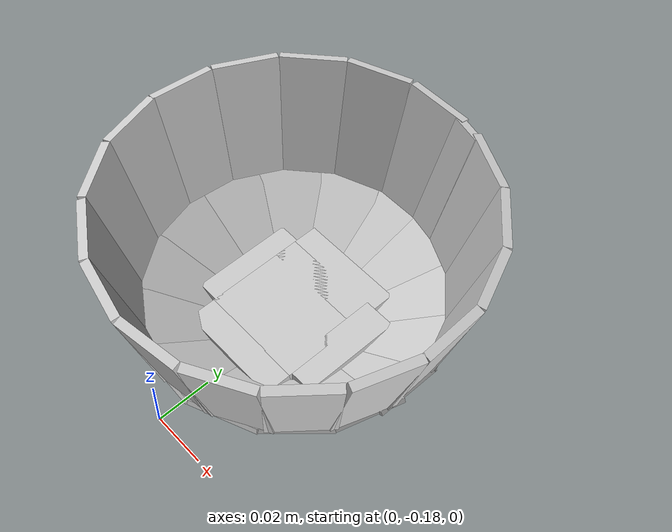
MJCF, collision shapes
<?xml version='1.0' encoding='utf-8'?>
<mujoco model="akita_black_bowl">
  <asset>
  <texture file="texture.png" name="tex-akita_black_bowl" type="2d" />
  <material name="akita_black_bowl" reflectance="0.5" texrepeat="1 1" texture="tex-akita_black_bowl" texuniform="false" />
  <mesh file="visual/akita_bowl_vis.msh" name="akita_black_bowl_vis" scale="0.85 0.85 0.85" /></asset>
  <worldbody>
    <body>
      <body name="object" pos="0.0 -0.12140000000000001 0.0">
      <geom solimp="0.998 0.998 0.001" solref="0.001 1" density="100" friction="0.95 0.3 0.1" type="mesh" mesh="akita_black_bowl_vis" conaffinity="0" contype="0" group="1" material="akita_black_bowl" /><geom solimp="0.998 0.998 0.001" solref="0.001 1" density="100" friction="0.95 0.3 0.1" type="box" pos="-0.0001214 0.04080254 0.01139946" quat="0.60990 -0.35780 -0.35780 -0.60990" size="0.00086194 0.012042879999999999 0.01441018" group="0" rgba="0.8 0.8 0.8 0.3" /><geom solimp="0.998 0.998 0.001" solref="0.001 1" density="100" friction="0.95 0.3 0.1" type="box" pos="-0.01783366 0.03662638 0.01164226" quat="0.45959 -0.42672 0.26704 0.73169" size="0.00086194 0.012042879999999999 0.01441018" group="0" rgba="0.8 0.8 0.8 0.3" /><geom solimp="0.998 0.998 0.001" solref="0.001 1" density="100" friction="0.95 0.3 0.1" type="box" pos="-0.0316247 0.025591120000000002 0.0118365" quat="0.29172 -0.47299 0.16619 0.81459" size="0.00086194 0.012042879999999999 0.01441018" group="0" rgba="0.8 0.8 0.8 0.3" /><geom solimp="0.998 0.998 0.001" solref="0.001 1" density="100" friction="0.95 0.3 0.1" type="box" pos="-0.039491420000000006 0.00962702 0.01194576" quat="0.10855 -0.49698 0.05658 0.85908" size="0.00086194 0.012042879999999999 0.01441018" group="0" rgba="0.8 0.8 0.8 0.3" /><geom solimp="0.998 0.998 0.001" solref="0.001 1" density="100" friction="0.95 0.3 0.1" type="box" pos="-0.039904180000000004 -0.007708899999999999 0.01194576" quat="0.49761 -0.07722 0.86246 0.05074" size="0.00086194 0.012042879999999999 0.01441018" group="0" rgba="0.8 0.8 0.8 0.3" /><geom solimp="0.998 0.998 0.001" solref="0.001 1" density="100" friction="0.95 0.3 0.1" type="box" pos="-0.032680879999999995 -0.024158600000000002 0.01194576" quat="0.47408 -0.26597 0.82406 0.15949" size="0.00086194 0.012042879999999999 0.01441018" group="0" rgba="0.8 0.8 0.8 0.3" /><geom solimp="0.998 0.998 0.001" solref="0.001 1" density="100" friction="0.95 0.3 0.1" type="box" pos="-0.01890198 -0.03598296 0.01194576" quat="0.42646 -0.44336 0.74380 0.26138" size="0.00086194 0.012042879999999999 0.01441018" group="0" rgba="0.8 0.8 0.8 0.3" /><geom solimp="0.998 0.998 0.001" solref="0.001 1" density="100" friction="0.95 0.3 0.1" type="box" pos="-0.00146894 -0.040620439999999994 0.01194576" quat="0.59728 0.35787 0.34946 -0.62695" size="0.00086194 0.012042879999999999 0.01441018" group="0" rgba="0.8 0.8 0.8 0.3" /><geom solimp="0.998 0.998 0.001" solref="0.001 1" density="100" friction="0.95 0.3 0.1" type="box" pos="0.016401139999999998 -0.03718482 0.01194576" quat="0.72249 0.27055 0.42070 -0.47731" size="0.00086194 0.012042879999999999 0.01441018" group="0" rgba="0.8 0.8 0.8 0.3" /><geom solimp="0.998 0.998 0.001" solref="0.001 1" density="100" friction="0.95 0.3 0.1" type="box" pos="0.03062922 -0.026720139999999996 0.01194576" quat="0.17267 -0.80894 0.30891 0.46945" size="0.00086194 0.012042879999999999 0.01441018" group="0" rgba="0.8 0.8 0.8 0.3" /><geom solimp="0.998 0.998 0.001" solref="0.001 1" density="100" friction="0.95 0.3 0.1" type="box" pos="0.039115079999999997 -0.0110474 0.01194576" quat="0.85700 0.06550 0.49588 -0.12397" size="0.00086194 0.012042879999999999 0.01441018" group="0" rgba="0.8 0.8 0.8 0.3" /><geom solimp="0.998 0.998 0.001" solref="0.001 1" density="100" friction="0.95 0.3 0.1" type="box" pos="0.039115079999999997 -0.0110474 0.01194576" quat="0.85700 0.06550 0.49588 -0.12397" size="0.00086194 0.012042879999999999 0.01441018" group="0" rgba="0.8 0.8 0.8 0.3" /><geom solimp="0.998 0.998 0.001" solref="0.001 1" density="100" friction="0.95 0.3 0.1" type="box" pos="0.04064472 0.00026708 0.01194576" quat="0.86591 -0.00473 0.50017 -0.00248" size="0.00086194 0.012042879999999999 0.01441018" group="0" rgba="0.8 0.8 0.8 0.3" /><geom solimp="0.998 0.998 0.001" solref="0.001 1" density="100" friction="0.95 0.3 0.1" type="box" pos="0.03685704 0.01712954 0.01194576" quat="0.84663 -0.11101 0.48771 0.18175" size="0.00086194 0.012042879999999999 0.01441018" group="0" rgba="0.8 0.8 0.8 0.3" /><geom solimp="0.998 0.998 0.001" solref="0.001 1" density="100" friction="0.95 0.3 0.1" type="box" pos="0.026173839999999997 0.03110268 0.01194576" quat="0.21392 0.78724 0.36065 -0.45213" size="0.00086194 0.012042879999999999 0.01441018" group="0" rgba="0.8 0.8 0.8 0.3" /><geom solimp="0.998 0.998 0.001" solref="0.001 1" density="100" friction="0.95 0.3 0.1" type="box" pos="0.01404598 0.03814388 0.01194576" quat="0.71324 -0.28870 0.40847 0.49101" size="0.00086194 0.012042879999999999 0.01441018" group="0" rgba="0.8 0.8 0.8 0.3" /><geom solimp="0.998 0.998 0.001" solref="0.001 1" density="100" friction="0.95 0.3 0.1" type="box" pos="-0.0001214 0.05720368 0.040875379999999996" quat="0.09041 0.70130 0.70130 -0.09041" size="0.00155392 0.011338759999999998 0.022762499999999998" group="0" rgba="0.8 0.8 0.8 0.3" /><geom solimp="0.998 0.998 0.001" solref="0.001 1" density="100" friction="0.95 0.3 0.1" type="box" pos="-0.020929359999999998 0.0532339 0.040875379999999996" quat="0.10558 0.55930 0.81905 -0.07209" size="0.00155392 0.011338759999999998 0.022762499999999998" group="0" rgba="0.8 0.8 0.8 0.3" /><geom solimp="0.998 0.998 0.001" solref="0.001 1" density="100" friction="0.95 0.3 0.1" type="box" pos="-0.038532359999999995 0.04228362 0.040875379999999996" quat="0.11689 0.40164 0.90683 -0.05176" size="0.00155392 0.011338759999999998 0.022762499999999998" group="0" rgba="0.8 0.8 0.8 0.3" /><geom solimp="0.998 0.998 0.001" solref="0.001 1" density="100" friction="0.95 0.3 0.1" type="box" pos="-0.051157959999999995 0.025591120000000002 0.040875379999999996" quat="0.22890 -0.12439 0.02951 0.96502" size="0.00155392 0.011338759999999998 0.022762499999999998" group="0" rgba="0.8 0.8 0.8 0.3" /><geom solimp="0.998 0.998 0.001" solref="0.001 1" density="100" friction="0.95 0.3 0.1" type="box" pos="-0.05692446 0.0055844 0.040875379999999996" quat="0.12768 0.04949 0.99056 -0.00638" size="0.00155392 0.011338759999999998 0.022762499999999998" group="0" rgba="0.8 0.8 0.8 0.3" /><geom solimp="0.998 0.998 0.001" solref="0.001 1" density="100" friction="0.95 0.3 0.1" type="box" pos="-0.0552977 -0.01461656 0.040875379999999996" quat="0.12679 0.12680 0.01635 -0.98366" size="0.00155392 0.011338759999999998 0.022762499999999998" group="0" rgba="0.8 0.8 0.8 0.3" /><geom solimp="0.998 0.998 0.001" solref="0.001 1" density="100" friction="0.95 0.3 0.1" type="box" pos="-0.0464355 -0.03339714 0.040875379999999996" quat="0.12173 -0.30325 0.94430 0.03909" size="0.00155392 0.011338759999999998 0.022762499999999998" group="0" rgba="0.8 0.8 0.8 0.3" /><geom solimp="0.998 0.998 0.001" solref="0.001 1" density="100" friction="0.95 0.3 0.1" type="box" pos="-0.031272640000000004 -0.04790444 0.040875379999999996" quat="0.11249 -0.47128 0.87267 0.06075" size="0.00155392 0.011338759999999998 0.022762499999999998" group="0" rgba="0.8 0.8 0.8 0.3" /><geom solimp="0.998 0.998 0.001" solref="0.001 1" density="100" friction="0.95 0.3 0.1" type="box" pos="-0.012261399999999999 -0.05586828 0.040875379999999996" quat="0.62080 0.09971 0.08003 -0.77348" size="0.00155392 0.011338759999999998 0.022762499999999998" group="0" rgba="0.8 0.8 0.8 0.3" /><geom solimp="0.998 0.998 0.001" solref="0.001 1" density="100" friction="0.95 0.3 0.1" type="box" pos="0.00847372 -0.0565724 0.040875379999999996" quat="0.75082 0.08352 0.09678 -0.64802" size="0.00155392 0.011338759999999998 0.022762499999999998" group="0" rgba="0.8 0.8 0.8 0.3" /><geom solimp="0.998 0.998 0.001" solref="0.001 1" density="100" friction="0.95 0.3 0.1" type="box" pos="0.0282255 -0.049749720000000004 0.040875379999999996" quat="0.06445 -0.85651 0.50004 0.11041" size="0.00155392 0.011338759999999998 0.022762499999999998" group="0" rgba="0.8 0.8 0.8 0.3" /><geom solimp="0.998 0.998 0.001" solref="0.001 1" density="100" friction="0.95 0.3 0.1" type="box" pos="0.04408034 -0.03645642 0.040875379999999996" quat="0.93283 0.04342 0.12024 -0.33687" size="0.00155392 0.011338759999999998 0.022762499999999998" group="0" rgba="0.8 0.8 0.8 0.3" /><geom solimp="0.998 0.998 0.001" solref="0.001 1" density="100" friction="0.95 0.3 0.1" type="box" pos="0.05432649999999999 -0.0179065 0.040875379999999996" quat="0.02040 -0.97909 0.15826 0.12620" size="0.00155392 0.011338759999999998 0.022762499999999998" group="0" rgba="0.8 0.8 0.8 0.3" /><geom solimp="0.998 0.998 0.001" solref="0.001 1" density="100" friction="0.95 0.3 0.1" type="box" pos="0.05715512 0.0022459 0.040875379999999996" quat="0.00238 0.99162 0.01844 -0.12782" size="0.00155392 0.011338759999999998 0.022762499999999998" group="0" rgba="0.8 0.8 0.8 0.3" /><geom solimp="0.998 0.998 0.001" solref="0.001 1" density="100" friction="0.95 0.3 0.1" type="box" pos="0.05715512 0.0022459 0.040875379999999996" quat="0.00238 0.99162 0.01844 -0.12782" size="0.00155392 0.011338759999999998 0.022762499999999998" group="0" rgba="0.8 0.8 0.8 0.3" /><geom solimp="0.998 0.998 0.001" solref="0.001 1" density="100" friction="0.95 0.3 0.1" type="box" pos="0.052699739999999995 0.02224048 0.040875379999999996" quat="0.02524 0.97229 0.19574 -0.12533" size="0.00155392 0.011338759999999998 0.022762499999999998" group="0" rgba="0.8 0.8 0.8 0.3" /><geom solimp="0.998 0.998 0.001" solref="0.001 1" density="100" friction="0.95 0.3 0.1" type="box" pos="0.041470240000000005 0.0393943 0.040875379999999996" quat="0.04729 0.92146 0.36683 -0.11878" size="0.00155392 0.011338759999999998 0.022762499999999998" group="0" rgba="0.8 0.8 0.8 0.3" /><geom solimp="0.998 0.998 0.001" solref="0.001 1" density="100" friction="0.95 0.3 0.1" type="box" pos="0.025093380000000002 0.051400760000000004 0.040875379999999996" quat="0.06760 0.84175 0.52452 -0.10850" size="0.00155392 0.011338759999999998 0.022762499999999998" group="0" rgba="0.8 0.8 0.8 0.3" /><geom solimp="0.998 0.998 0.001" solref="0.001 1" density="100" friction="0.95 0.3 0.1" type="box" pos="0.012819839999999999 0.05574688 0.040875379999999996" quat="0.07953 0.77656 0.61693 -0.10010" size="0.0015175 0.005390160000000001 0.02272608" group="0" rgba="0.8 0.8 0.8 0.3" /><geom solimp="0.998 0.998 0.001" solref="0.001 1" density="100" friction="0.95 0.3 0.1" type="box" pos="-0.0 -0.0009105 0.00506238" quat="0.70711 0.00000 0.70711 0.00000" size="0.0031321199999999995 0.018780579999999998 0.01963038" group="0" rgba="0.8 0.8 0.8 0.3" /><geom solimp="0.998 0.998 0.001" solref="0.001 1" density="100" friction="0.95 0.3 0.1" type="box" pos="-0.0 -0.024534939999999998 0.00506238" quat="0.70711 0.00000 0.70711 0.00000" size="0.0031321199999999995 0.005232339999999999 0.01963038" group="0" rgba="0.8 0.8 0.8 0.3" /><geom solimp="0.998 0.998 0.001" solref="0.001 1" density="100" friction="0.95 0.3 0.1" type="box" pos="0.02210694 0.00019424 0.00506238" quat="0.50000 -0.50000 0.50000 0.50000" size="0.0031321199999999995 0.0060093 0.018780579999999998" group="0" rgba="0.8 0.8 0.8 0.3" /><geom solimp="0.998 0.998 0.001" solref="0.001 1" density="100" friction="0.95 0.3 0.1" type="box" pos="-0.0219734 4.856e-05 0.00506238" quat="0.50000 -0.50000 0.50000 0.50000" size="0.0031321199999999995 0.00549942 0.018780579999999998" group="0" rgba="0.8 0.8 0.8 0.3" /><geom solimp="0.998 0.998 0.001" solref="0.001 1" density="100" friction="0.95 0.3 0.1" type="box" pos="-0.0 0.0180886 0.00506238" quat="0.00000 0.70711 0.00000 -0.70711" size="0.0031321199999999995 0.00899574 0.01963038" group="0" rgba="0.8 0.8 0.8 0.3" /></body>
      <site rgba="0 0 0 0" size="0.00607" pos="0.0 0.0 -0.07284" name="bottom_site" />
      <site rgba="0 0 0 0" size="0.00607" pos="0.0 0.0 0.04856" name="top_site" />
      <site rgba="0 0 0 0" size="0.00607" pos="0.030350000000000002 0.030350000000000002 0.0" name="horizontal_radius_site" />
    </body>
  </worldbody>
</mujoco>
